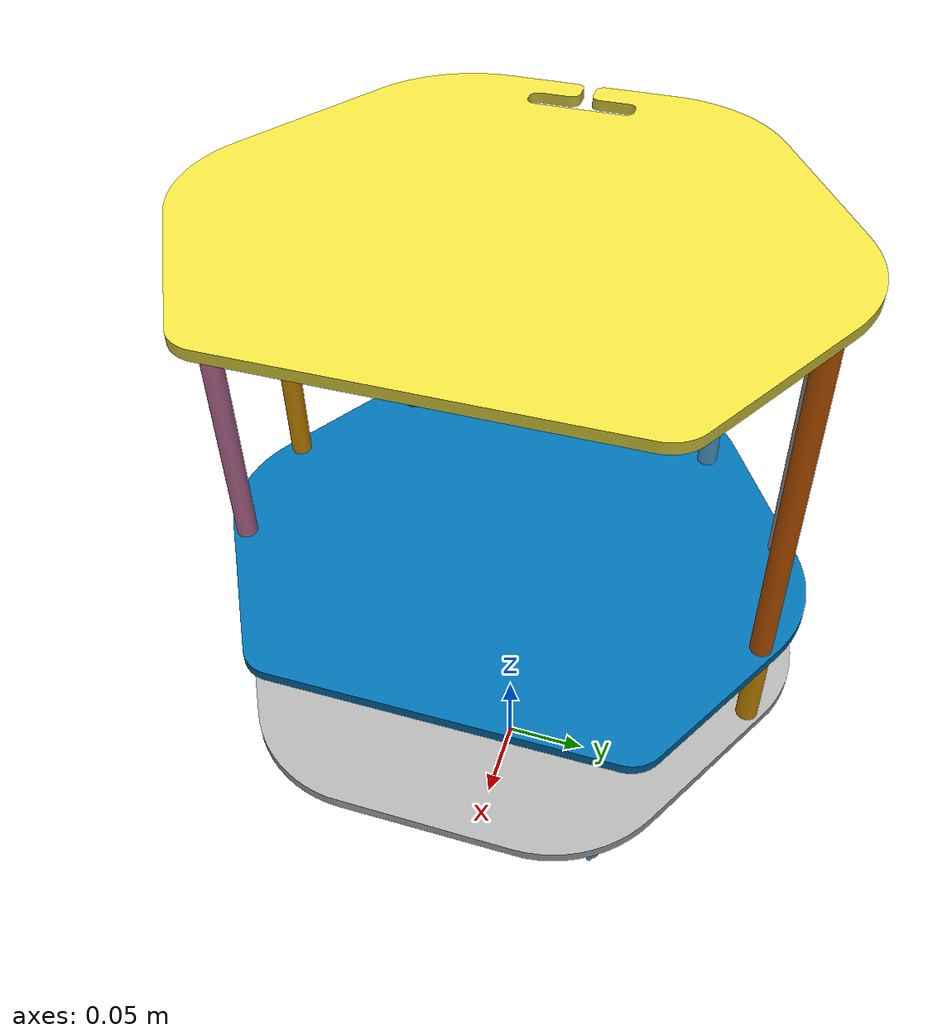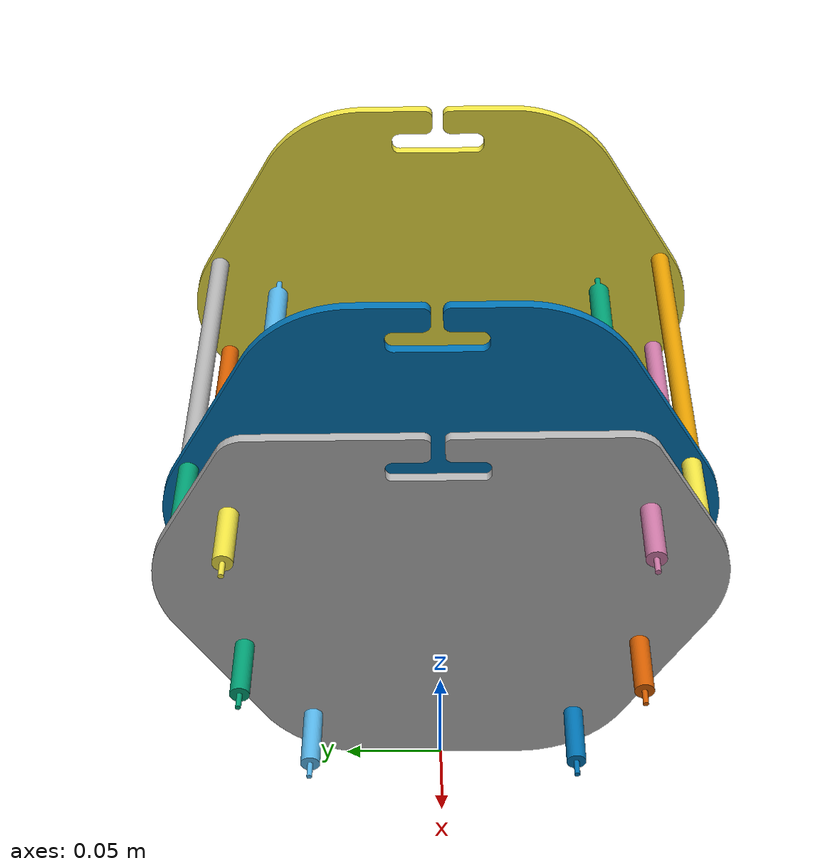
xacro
<?xml version="1.0"?>
<robot name="static_turtlebot" xmlns:xacro="http://www.ros.org/wiki/xacro">
  <!-- Global constants and world link -->
  <xacro:include filename="$(find simulation)/description/urdf/common.urdf.xacro" />

  <xacro:include filename="$(find turtlebot_description)/urdf/stacks/hexagons.urdf.xacro"/>

  <stack_hexagons parent="${WORLD}"/>

  <gazebo>
      <static>true</static>
  </gazebo>
</robot>

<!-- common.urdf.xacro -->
<robot name="cup_picker_constants" xmlns:xacro="http://ros.org/wiki/xacro">
  <!-- PI the circle number. -->
  <xacro:property name="M_PI" value="3.1415926535897931"/>

  <!-- Prefix identifying the cup picker robot. -->
  <xacro:property name="CUP_PICKER" value=""/>

  <!-- Prefix identifying the turtlebot robot. -->
  <xacro:property name="TURTLEBOT" value=""/>

  <!-- Name of the link representing the world of the robot. -->
  <xacro:property name="WORLD" value="world"/>

  <!-- The world link (can be replaced by another link if needed). -->
  <link name="world" />

  <!-- Width of the lab table. -->
  <xacro:property name="LAB_TABLE_WIDTH" value="${0.61 + 0.07}"/>

  <!-- Height of the lab table. -->
  <xacro:property name="LAB_TABLE_HEIGHT" value="0.96"/>

  <!-- Depth of the lab table. -->
  <xacro:property name="LAB_TABLE_DEPTH" value="0.41"/>
</robot>

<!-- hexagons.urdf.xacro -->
<!--
  Hexagon stacks
 -->
<robot name="stack_hexagons" xmlns:xacro="http://ros.org/wiki/xacro">
  <xacro:include filename="$(find turtlebot_description)/urdf/common_properties.urdf.xacro"/>

  <!-- Xacro properties -->
  <xacro:property name="M_SCALE" value="0.001"/>

  <!-- Xacro macros -->
  <!-- Pole macros -->
  <xacro:macro name="stack_bottom_pole" params="parent number x_loc y_loc z_loc roll=0.0 pitch=0.0 yaw=0.0">
    <joint name="pole_bottom_${number}_joint" type="fixed">
      <origin xyz="${x_loc} ${y_loc} ${z_loc}" rpy="${roll} ${pitch} ${yaw}"/>
      <parent link="${parent}"/>
      <child link="pole_bottom_${number}_link"/>
    </joint>
    <link name="pole_bottom_${number}_link">
      <visual>
        <origin xyz="0 0 0" rpy="0 0 0"/>
        <geometry>
          <mesh filename="package://turtlebot_description/meshes/stacks/hexagons/pole_bottom.dae"/>
        </geometry>
      </visual>
      <collision>
        <origin xyz="0 0 0" rpy="0 0 0"/>
        <geometry>
          <cylinder length="0.0492" radius="0.006"/>
        </geometry>
      </collision>
      <inertial>
        <mass value="0.008"/>
        <origin xyz="0 0 0" rpy="0 0 0"/>
        <inertia ixx="0.000001686" ixy="0.0" ixz="0.0"
                 iyy="0.000001686" iyz="0.0"
                 izz="0.000000144"/>
      </inertial>
    </link>
  </xacro:macro>

  <xacro:macro name="stack_middle_pole" params="parent number x_loc y_loc z_loc roll=0.0 pitch=0.0 yaw=0.0">
    <joint name="pole_middle_${number}_joint" type="fixed">
      <origin xyz="${x_loc} ${y_loc} ${z_loc}" rpy="${roll} ${pitch} ${yaw}" />
      <parent link="${parent}"/>
      <child link="pole_middle_${number}_link"/>
    </joint>
    <link name="pole_middle_${number}_link">
      <visual>
        <origin xyz="0 0 0" rpy="0 ${M_PI} 0"/>
        <geometry>
          <mesh filename="package://turtlebot_description/meshes/stacks/hexagons/pole_middle.dae"/>
        </geometry>
      </visual>
      <collision>
        <origin xyz="0 0 0" rpy="0 0 0"/>
        <geometry>
          <cylinder length="0.0608" radius="0.006"/>
        </geometry>
      </collision>
      <inertial>
        <mass value="0.012"/>
        <origin xyz="0 0 0"/>
        <inertia ixx="0.000003805" ixy="0.0" ixz="0.0"
                 iyy="0.000003805" iyz="0.0"
                 izz="0.000000216"/>
      </inertial>
    </link>
  </xacro:macro>

  <xacro:macro name="stack_top_pole" params="parent number x_loc y_loc z_loc roll=0.0 pitch=0.0 yaw=0.0">
    <joint name="pole_top_${number}_joint" type="fixed">
      <origin xyz="${x_loc} ${y_loc} ${z_loc}" rpy="${roll} ${pitch} ${yaw}"/>
      <parent link="${parent}"/>
      <child link="pole_top_${number}_link"/>
    </joint>
    <link name="pole_top_${number}_link">
      <visual>
        <origin xyz=" 0 0 0" rpy="0 0 0"/>
        <geometry>
          <mesh filename="package://turtlebot_description/meshes/stacks/hexagons/pole_top.dae"/>
        </geometry>
      </visual>
      <collision>
        <origin xyz="0 0 0" rpy="0 0 0"/>
        <geometry>
          <cylinder length="0.2032" radius="0.006"/>
        </geometry>
      </collision>
      <inertial>
        <mass value="0.060"/>
        <origin xyz="0 0 0"/>
        <inertia ixx="0.000206991" ixy="0.0" ixz="0.0"
                 iyy="0.000206991" iyz="0.0"
                 izz="0.000001080"/>
      </inertial>
    </link>
  </xacro:macro>

  <xacro:macro name="stack_3d_sensor_pole" params="parent number x_loc y_loc z_loc roll=0.0 pitch=0.0 yaw=0.0">
    <joint name="pole_kinect_${number}_joint" type="fixed">
      <origin xyz="${x_loc} ${y_loc} ${z_loc}" rpy="${roll} ${pitch} ${yaw}"/>
      <parent link="${parent}"/>
      <child link="pole_kinect_${number}_link"/>
    </joint>
    <link name="pole_kinect_${number}_link">
      <visual>
        <origin xyz="0 0 0" rpy="0 0 0"/>
        <geometry>
          <mesh filename="package://turtlebot_description/meshes/stacks/hexagons/pole_kinect.dae" />
        </geometry>
      </visual>
      <collision>
        <origin xyz="0 0 0" rpy="0 0 0"/>
        <geometry>
          <cylinder length="0.0936" radius="0.006"/>
        </geometry>
      </collision>
      <inertial>
        <mass value="0.020"/>
        <origin xyz="0 0 0"/>
        <inertia ixx="0.000014782" ixy="0.0" ixz="0.0"
                 iyy="0.000014782" iyz="0.0"
                 izz="0.000000360"/>
      </inertial>
    </link>
  </xacro:macro>

  <xacro:macro name="stack_hexagons" params="parent">
    <xacro:stack_bottom_pole parent="${parent}" number="0" x_loc= "0.120" y_loc= "0.082" z_loc="0.1028"/>
    <xacro:stack_bottom_pole parent="${parent}" number="1" x_loc= "0.055" y_loc= "0.120" z_loc="0.1028"/>
    <xacro:stack_bottom_pole parent="${parent}" number="2" x_loc="-0.055" y_loc= "0.120" z_loc="0.1028"/>
    <xacro:stack_bottom_pole parent="${parent}" number="3" x_loc= "0.120" y_loc="-0.082" z_loc="0.1028"/>
    <xacro:stack_bottom_pole parent="${parent}" number="4" x_loc= "0.055" y_loc="-0.120" z_loc="0.1028"/>
    <xacro:stack_bottom_pole parent="${parent}" number="5" x_loc="-0.055" y_loc="-0.120" z_loc="0.1028"/>

    <joint name="plate_bottom_joint" type="fixed">
      <origin xyz="0.02364 0.0 0.1306" rpy="0 0 0"/>
      <parent link="${parent}"/>
      <child link="plate_bottom_link"/>
    </joint>
    <link name="plate_bottom_link">
      <visual>
        <origin xyz="0 0 0" rpy="0 0 0"/>
        <geometry>
          <mesh filename="package://turtlebot_description/meshes/stacks/hexagons/plate_bottom.dae"/>
        </geometry>
      </visual>
      <collision>
        <origin xyz="-0.02364 0 0" rpy="0 0 0"/>
        <geometry>
          <cylinder length="0.006" radius="0.170"/>
        </geometry>
      </collision>
      <inertial>
        <mass value="0.520" />
        <origin xyz="0 0 0" />
        <inertia ixx="0.003328" ixy="0.0" ixz="0.0"
                 iyy="0.003328" iyz="0.0"
                 izz="0.006656" />
      </inertial>
    </link>

    <xacro:stack_middle_pole parent="${parent}" number="0" x_loc= "0.0381" y_loc= "0.1505" z_loc="0.1640"/>
    <xacro:stack_middle_pole parent="${parent}" number="1" x_loc= "0.0381" y_loc="-0.1505" z_loc="0.1640"/>
    <xacro:stack_middle_pole parent="${parent}" number="2" x_loc="-0.0381" y_loc= "0.1505" z_loc="0.1640"/>
    <xacro:stack_middle_pole parent="${parent}" number="3" x_loc="-0.0381" y_loc="-0.1505" z_loc="0.1640"/>

    <joint name="plate_middle_joint" type="fixed">
      <origin xyz="-0.01364 0.0 0.1874" rpy="0 0 0"/>
      <parent link="${parent}"/>
      <child link="plate_middle_link"/>
    </joint>
    <link name="plate_middle_link">
      <visual>
        <origin xyz="0 0 0" rpy="0 0 0"/>
        <geometry>
          <mesh filename="package://turtlebot_description/meshes/stacks/hexagons/plate_middle.dae"/>
        </geometry>
      </visual>
      <collision>
        <origin xyz="0.01364 0.0 0.0" rpy="0 0 0"/>
        <geometry>
          <mesh filename="package://turtlebot_description/meshes/stacks/hexagons/plate_simple-binary.stl"
                scale="${M_SCALE} ${M_SCALE} ${M_SCALE}"/>
        </geometry>
      </collision>
      <inertial>
        <mass value="0.520" />
        <origin xyz="0 0 0" />
        <inertia ixx="0.003328" ixy="0.0" ixz="0.0"
                 iyy="0.003328" iyz="0.0"
                 izz="0.006656" />
      </inertial>
    </link>

    <xacro:stack_top_pole parent="${parent}" number="0" x_loc= "0.0381" y_loc= "0.1505" z_loc="0.2920"/>
    <xacro:stack_top_pole parent="${parent}" number="1" x_loc= "0.0381" y_loc="-0.1505" z_loc="0.2920"/>
    <xacro:stack_top_pole parent="${parent}" number="2" x_loc="-0.0381" y_loc= "0.1505" z_loc="0.2920"/>
    <xacro:stack_top_pole parent="${parent}" number="3" x_loc="-0.0381" y_loc="-0.1505" z_loc="0.2920"/>
    <xacro:stack_3d_sensor_pole parent="${parent}" number="0" x_loc="-0.1024" y_loc= "0.098" z_loc="0.2372"/>
    <xacro:stack_3d_sensor_pole parent="${parent}" number="1" x_loc="-0.1024" y_loc="-0.098" z_loc="0.2372"/>

    <joint name="plate_top_joint" type="fixed">
      <origin xyz="-0.01364 0.0  0.3966" rpy="0 0 0"/>
      <parent link="${parent}"/>
      <child link="plate_top_link"/>
    </joint>
    <link name="plate_top_link">
      <visual>
        <origin xyz="0 0 0" rpy="0 0 0"/>
        <geometry>
          <mesh filename="package://turtlebot_description/meshes/stacks/hexagons/plate_top.dae"/>
        </geometry>
      </visual>
      <collision>
        <origin xyz="0.01364 0 0" rpy="0 0 0"/>
        <geometry>
          <mesh filename="package://turtlebot_description/meshes/stacks/hexagons/plate_simple-binary.stl"
                scale="${M_SCALE} ${M_SCALE} ${M_SCALE}"/>
        </geometry>
      </collision>
      <inertial>
        <mass value="0.520"/>
        <origin xyz="0 0 0"/>
        <inertia ixx="0.003328" ixy="0.0" ixz="0.0"
                 iyy="0.003328" iyz="0.0"
                 izz="0.006656" />
      </inertial>
    </link>
  </xacro:macro>
</robot>
